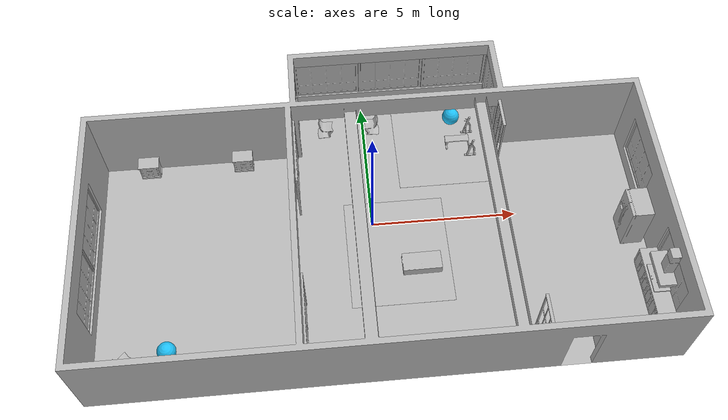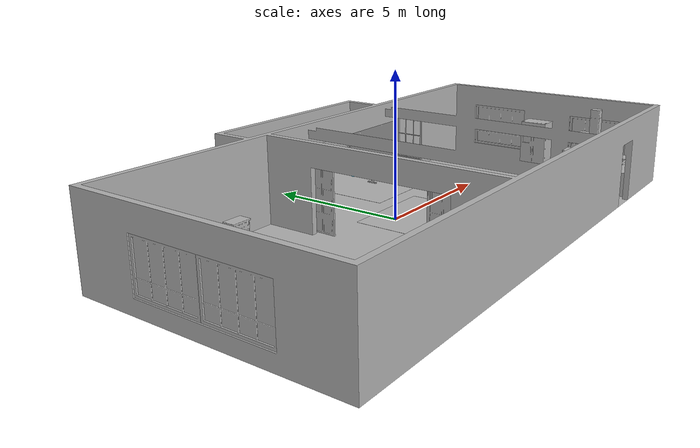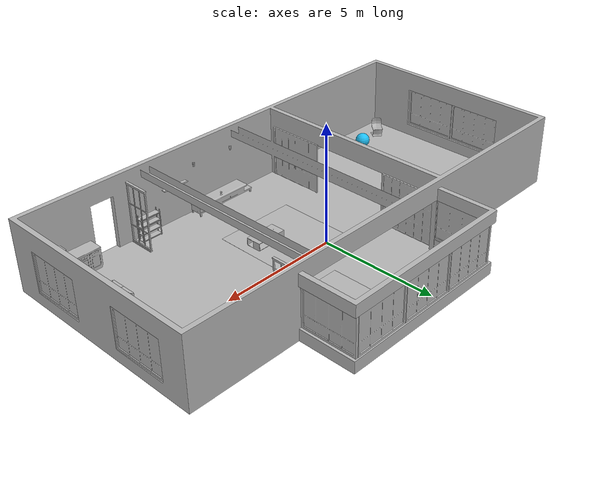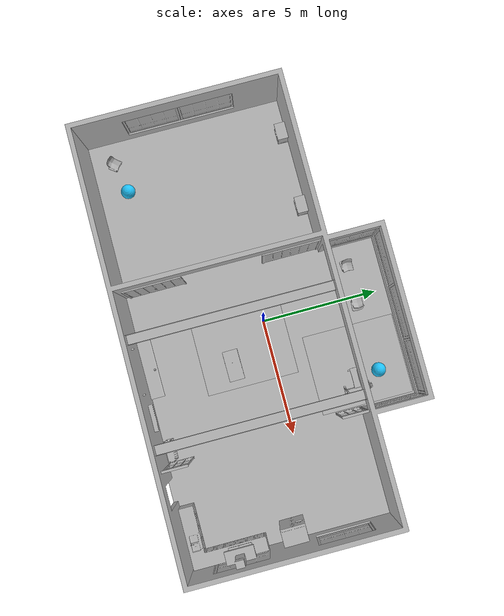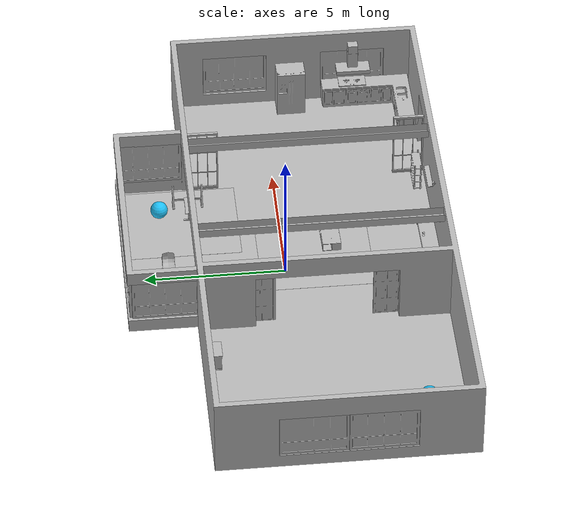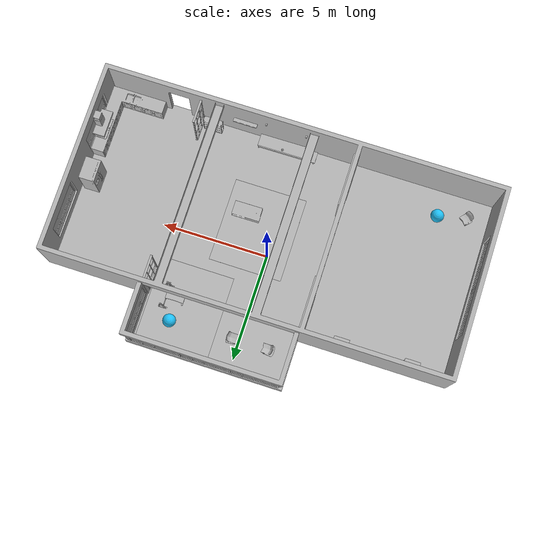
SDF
<sdf version="1.6">
 <world name="default">
  <gravity>0 0 -9.8</gravity>
  <magnetic_field>6e-06 2.3e-05 -4.2e-05</magnetic_field>
  <atmosphere type="adiabatic"/>
  <physics name="default_physics" default="0" type="ode">
   <max_step_size>0.001</max_step_size>
   <real_time_factor>1</real_time_factor>
   <real_time_update_rate>1000</real_time_update_rate>
   <ode>
    <max_contacts>4</max_contacts>
    <contact_surface_layer>0.001</contact_surface_layer>
    <contact_max_correcting_vel>100.0</contact_max_correcting_vel>
   </ode>
  </physics>
  <scene>
   <ambient>0.4 0.4 0.4 1</ambient>
   <background>0.7 0.7 0.7 1</background>
   <shadows>false</shadows>
   <grid>false</grid>
   <origin_visual>false</origin_visual>
  </scene>
  <spherical_coordinates>
   <surface_model>EARTH_WGS84</surface_model>
   <latitude_deg>0</latitude_deg>
   <longitude_deg>0</longitude_deg>
   <elevation>0</elevation>
   <heading_deg>0</heading_deg>
  </spherical_coordinates>
  <model name="Ball_01_001">
   <static>true</static>
   <include><uri>model://aws_robomaker_residential_Ball_01</uri></include>
   <pose>3.295503 4.225674 0.318684 0 -0 0</pose>
  </model>
  <model name="Ball_01_003">
   <static>true</static>
   <include><uri>model://aws_robomaker_residential_Ball_01</uri></include>
   <pose>-6.945503 -4.22174 0.318684 0 -0 0</pose>
  </model>
  <model name="NightStand_01_001">
   <static>true</static>
   <include><uri>model://aws_robomaker_residential_NightStand_01</uri></include>
   <pose>-7.725510 2.860420 0.005258 -0.000002 0 0</pose>
  </model>
  <model name="NightStand_01_002">
   <static>true</static>
   <include><uri>model://aws_robomaker_residential_NightStand_01</uri></include>
   <pose>-4.407341 2.860420 0.005256 0 0.000002 0</pose>
  </model>
  <model name="Board_01_001">
   <static>true</static>
   <include><uri>model://aws_robomaker_residential_Board_01</uri></include>
   <pose>2.779073 -5.392703 1.538173 0 -0 0</pose>
  </model>
  <model name="ChairD_01_001">
   <static>true</static>
   <include><uri>model://aws_robomaker_residential_ChairD_01</uri></include>
   <pose>-1.380775 4.104456 0 0 -0 0</pose>
  </model>
  <model name="ChairD_01_002">
   <static>true</static>
   <include><uri>model://aws_robomaker_residential_ChairD_01</uri></include>
   <pose>0.325214 4.104456 0 0 -0 -3.138741</pose>
  </model>
  <model name="ChairD_01_003">
   <static>true</static>
   <include><uri>model://aws_robomaker_residential_ChairD_01</uri></include>
   <pose>-8.270775 -4.504456 0 0 -0 0.869673</pose>
  </model>
  <model name="Carpet_01_001">
   <static>true</static>
   <include><uri>model://aws_robomaker_residential_Carpet_01</uri></include>
   <pose>0.785050 -1.106647 0.001106 0 -0 0</pose>
  </model>
  <model name="Carpet_01_002">
   <static>true</static>
   <include><uri>model://aws_robomaker_residential_Carpet_01</uri></include>
   <pose>2.854050 3.45 0.000585 0 -0 0</pose>
  </model>
  <model name="SecurityCamera_01_001">
   <static>true</static>
   <include><uri>model://aws_robomaker_residential_SecurityCamera_01</uri></include>
   <pose>0.842134 -4.996294 0.495067 0 -0 -2.841039</pose>
  </model>
  <model name="CoffeeTable_01_001">
   <static>true</static>
   <include><uri>model://aws_robomaker_residential_CoffeeTable_01</uri></include>
   <pose>1.512301 -1.733438 0.041983 0.000000 0.000000 0.01000</pose>
  </model>
  <model name="CookingBench_01_001">
   <include><uri>model://aws_robomaker_residential_CookingBench_01</uri></include>
   <pose>9.038383 -3.351140 0.903610 0 -0 3.137133</pose>
   <static>true</static>
  </model>
  <model name="FitnessEquipment_01_001">
   <static>true</static>
   <include><uri>model://aws_robomaker_residential_FitnessEquipment_01</uri></include>
   <pose>3.484720 3.169104 0.003168 0 -0 0</pose>
  </model>
  <model name="FoldingDoor_01_001">
   <static>true</static>
   <include><uri>model://aws_robomaker_residential_FoldingDoor_01</uri></include>
   <pose>-2.461096 1.844219 0.041881 0 -0 0</pose>
  </model>
  <model name="FoldingDoor_01_002">
   <static>true</static>
   <include><uri>model://aws_robomaker_residential_FoldingDoor_01</uri></include>
   <pose>-2.461096 -4.053320 0.041881 0 -0 0</pose>
  </model>
  <model name="HouseWallB_01_001">
   <static>true</static>
   <include><uri>model://aws_robomaker_residential_HouseWallB_01</uri></include>
  </model>
  <model name="FloorB_01_001">
   <static>true</static>
   <include><uri>model://aws_robomaker_residential_FloorB_01</uri></include>
  </model>
  <model name="FoldingDoor_02_001">
   <static>true</static>
   <include><uri>model://aws_robomaker_residential_FoldingDoor_02</uri></include>
   <pose>4.674231 2.46451 0 0 -0 3.14159</pose>
  </model>
  <model name="FoldingDoor_02_002">
   <static>true</static>
   <include><uri>model://aws_robomaker_residential_FoldingDoor_02</uri></include>
   <pose>4.8912 -4.84968 0 0 -0 0</pose>
  </model>
  <model name="KitchenCabinet_01_001">
   <static>true</static>
   <include><uri>model://aws_robomaker_residential_KitchenCabinet_01</uri></include>
   <pose>8.002009 -3.836509 0.012068 0 -0 -3.140001</pose>
  </model>
  <model name="LightC_01_001">
   <static>true</static>
   <include><uri>model://aws_robomaker_residential_LightC_01</uri></include>
   <pose>1.769567 -5.4443710 2.000000 0 -0 0</pose>
  </model>
  <model name="LightC_01_002">
   <static>true</static>
   <include><uri>model://aws_robomaker_residential_LightC_01</uri></include>
   <pose>-0.138245 -5.4443710 2.000000 0 -0 0</pose>
  </model>
  <model name="Rangehood_01_001">
   <static>true</static>
   <include><uri>model://aws_robomaker_residential_Rangehood_01</uri></include>
   <pose>9.019794 -3.369940 1.507605 0 -0 0</pose>
  </model>
  <model name="Refrigerator_01_001">
   <static>true</static>
   <include><uri>model://aws_robomaker_residential_Refrigerator_01</uri></include>
   <pose>8.702731 -1.032031 0 0 -0 -1.563499</pose>
  </model>
  <model name="ShoeRack_01_001">
   <static>true</static>
   <include><uri>model://aws_robomaker_residential_ShoeRack_01</uri></include>
   <pose>4.297978 -5.173566 0 0 -0 0</pose>
  </model>
  <model name="TVCabinet_01_001">
   <static>true</static>
   <include><uri>model://aws_robomaker_residential_TVCabinet_01</uri></include>
   <pose>0.629509 -5.183576 -0.017049 0 -0 1.5792</pose>
  </model>
  <model name="RoomWindow_01_001">
   <static>true</static>
   <include><uri>model://aws_robomaker_residential_RoomWindow_01</uri></include>
   <pose>-9.418600 -0.026285 0.502739 0 -0 0</pose>
  </model>
  <model name="RoomWindow_01_002">
   <static>true</static>
   <include><uri>model://aws_robomaker_residential_RoomWindow_01</uri></include>
   <pose>-9.418600 -2.374090 0.502739 0 -0 0</pose>
  </model>
  <model name="RoomWindow_01_003">
   <static>true</static>
   <include><uri>model://aws_robomaker_residential_RoomWindow_01</uri></include>
   <pose>9.422616 -3.373981 0.502739 0 -0 -3.136099</pose>
  </model>
  <model name="RoomWindow_01_004">
   <static>true</static>
   <include><uri>model://aws_robomaker_residential_RoomWindow_01</uri></include>
   <pose>9.422558 0.968520 0.496581 0 -0 -3.136099</pose>
  </model>
  <model name="RoomWindow_01_005">
   <static>true</static>
   <include><uri>model://aws_robomaker_residential_RoomWindow_01</uri></include>
   <pose>4.722317 4.470281 0.502739 0 -0 -3.136099</pose>
  </model>
  <model name="RoomWindow_01_006">
   <static>true</static>
   <include><uri>model://aws_robomaker_residential_RoomWindow_01</uri></include>
   <pose>3.488520 5.600688 0.502739 0 -0 -1.566274</pose>
  </model>
  <model name="RoomWindow_01_007">
   <static>true</static>
   <include><uri>model://aws_robomaker_residential_RoomWindow_01</uri></include>
   <pose>1.140949 5.600688 0.502739 0 -0 -1.566274</pose>
  </model>
  <model name="RoomWindow_01_008">
   <static>true</static>
   <include><uri>model://aws_robomaker_residential_RoomWindow_01</uri></include>
   <pose>-1.199340 5.600688 0.502739 0 -0 -1.566274</pose>
  </model>
  <model name="RoomWindow_01_009">
   <static>true</static>
   <include><uri>model://aws_robomaker_residential_RoomWindow_01</uri></include>
   <pose>-2.396624 4.387607 0.502739 0 -0 0</pose>
  </model>
  <light name="LivingRoom_CeilingLight_0" type="point">
   <pose>1.194296 4.155759 2.2 0 -0 0</pose>
   <diffuse>0.5 0.5 0.5 1</diffuse>
   <specular>0.1 0.1 0.1 1</specular>
   <attenuation>
    <range>20</range>
    <constant>0.32</constant>
    <linear>0.01</linear>
    <quadratic>0.03</quadratic>
   </attenuation>
   <cast_shadows>0</cast_shadows>
   <direction>0 0 -1</direction>
  </light>
  <light name="LivingRoom_CeilingLight_1" type="point">
   <pose>1.194296 -1.589959 2.2 0 -0 0</pose>
   <diffuse>0.5 0.5 0.5 1</diffuse>
   <specular>0.1 0.1 0.1 1</specular>
   <attenuation>
    <range>20</range>
    <constant>0.05</constant>
    <linear>0.01</linear>
    <quadratic>0.09</quadratic>
   </attenuation>
   <cast_shadows>0</cast_shadows>
   <direction>0 0 -1</direction>
  </light>
  <light name="LivingRoom_WallLight_0" type="point">
   <pose>1.76956 -5.444370 2.2 0 -0 0</pose>
   <diffuse>0.24 0.24 0.24 1</diffuse>
   <specular>0.1 0.1 0.1 1</specular>
   <attenuation>
    <range>20</range>
    <constant>0.12</constant>
    <linear>0.00</linear>
    <quadratic>0.03</quadratic>
   </attenuation>
   <direction>0 0 -1</direction>
  </light>
  <light name="LivingRoom_WallLight_1" type="point">
   <pose>-0.13826 -5.444370 2.2 0 -0 0</pose>
   <diffuse>0.24 0.24 0.24 1</diffuse>
   <specular>0.1 0.1 0.1 1</specular>
   <attenuation>
    <range>20</range>
    <constant>0.12</constant>
    <linear>0.00</linear>
    <quadratic>0.03</quadratic>
   </attenuation>
   <direction>0 0 -1</direction>
  </light>
  <light name="TV_Light_0" type="point">
   <pose>0.8269 -4.939577 1.1 0 -0 0</pose>
   <diffuse>0.31372 0.31372 0.34901 1</diffuse>
   <specular>0.1 0.1 0.1 1</specular>
   <attenuation>
    <range>3</range>
    <constant>0.10</constant>
    <linear>0.04</linear>
    <quadratic>0.50</quadratic>
   </attenuation>
   <direction>0 0 -1</direction>
  </light>
  <light name="BedRoom_CeilingLight_0" type="point">
   <pose>-6.451061 -0.692040 2.000000 0 -0 0</pose>
   <diffuse>0.5 0.5 0.5 1</diffuse>
   <specular>0.1 0.1 0.1 1</specular>
   <attenuation>
    <range>20</range>
    <constant>0.32</constant>
    <linear>0.01</linear>
    <quadratic>0.03</quadratic>
   </attenuation>
   <cast_shadows>0</cast_shadows>
   <direction>0 0 -1</direction>
  </light>
  <light name="Kitchen_CeilingLight_0" type="point">
   <pose>7.8582 -1.5905 2.280000 0 -0 0</pose>
   <diffuse>0.5 0.5 0.5 1</diffuse>
   <specular>0.1 0.1 0.1 1</specular>
   <attenuation>
    <range>20</range>
    <constant>0.3</constant>
    <linear>0.01</linear>
    <quadratic>0.01</quadratic>
   </attenuation>
   <cast_shadows>0</cast_shadows>
   <direction>0 0 -1</direction>
  </light>
 </world>
</sdf>

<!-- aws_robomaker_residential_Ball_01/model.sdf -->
<sdf version="1.6">
  <model name="aws_robomaker_residential_Ball_01">
    <link name="link">
      <inertial>
        <mass>0.12</mass>
        <!-- 2r = 62cm -->
          <inertia>
            <ixx>0.030752</ixx>
            <ixy>0</ixy>
            <ixz>0</ixz>
            <iyy>0.030752</iyy>
            <iyz>0</iyz>
            <izz>0.030752</izz>
          </inertia>
      </inertial>
      <collision name="collision">

        <geometry>
          <sphere>
            <radius>0.31 </radius>
          </sphere>

        </geometry>

        <surface>
          <friction>
            <ode>
              <mu>0.85</mu>
              <mu2>0.85</mu2>
            </ode>
          </friction>

        <!-- Add some bounciness to the ball -->
          <contact>
            <ode>
              <kd>8500</kd>
              <max_vel>5.1</max_vel>
            </ode>
          </contact>
        </surface>

      </collision>
      <visual name="visual">
	    <geometry>
          <sphere>
            <radius>0.31 </radius>
          </sphere>
      </geometry>
          <material>
            <diffuse>0.12 0.76 0.97 1</diffuse>
            <ambient>0.03 0.21 0.27 1</ambient>
          </material>
      <meta> <layer> 1 </layer></meta>
</visual>
    </link>
  </model>
</sdf>

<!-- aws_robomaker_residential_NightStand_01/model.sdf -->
<sdf version="1.6">
  <model name="aws_robomaker_residential_NightStand_01">
    <link name="link">
      <inertial>
        <mass>13.6</mass>

        <inertia>
          <ixx>0.6165</ixx>
          <ixy>0</ixy>
          <ixz>0</ixz>
          <iyy>1.29664</iyy>
          <iyz>0</iyz>
          <izz>0.7706</izz>
        </inertia>

      </inertial>
      <collision name="collision">
        <geometry>
          <mesh>
            <uri>models://aws_robomaker_residential_NightStand_01/meshes/aws_NightStand_01_collision.DAE</uri>
            <scale>1 1 1</scale>
          </mesh>
        </geometry>
      </collision>
      <visual name="visual">
	    <geometry>
          <mesh>
            <uri>models://aws_robomaker_residential_NightStand_01/meshes/aws_NightStand_01_visual.DAE</uri>
          </mesh>
        </geometry>
      <meta> <layer> 1 </layer></meta>
</visual>
    </link>
    <static>1</static>
  </model>
</sdf>

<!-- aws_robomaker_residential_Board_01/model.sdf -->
<sdf version="1.6">
  <model name="aws_robomaker_residential_Board_01">
    <link name="link">
      <inertial>
        <mass>1</mass>
      </inertial>
      <collision name="collision">
        <geometry>
          <mesh>
            <uri>models://aws_robomaker_residential_Board_01/meshes/aws_Board_01_collision.DAE</uri>
            <scale>1 1 1</scale>
          </mesh>
        </geometry>
      </collision>
      <visual name="visual">
	    <geometry>
          <mesh>
            <uri>models://aws_robomaker_residential_Board_01/meshes/aws_Board_01_visual.DAE</uri>
          </mesh>
        </geometry>
      <meta> <layer> 2 </layer></meta>
</visual>
    </link>

    <static>1</static>
  </model>
</sdf>

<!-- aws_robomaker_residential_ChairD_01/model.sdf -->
<sdf version="1.6">
  <model name="aws_robomaker_residential_ChairD_01">
    <link name="link">

      <inertial>
        <mass>4.5</mass>
          <inertia>
            <ixy>0</ixy>
            <ixz>0</ixz>
            <iyz>0</iyz>
            <ixx>0.217</ixx>
            <iyy>0.217</iyy>
            <izz>0.067</izz>
          </inertia>
      </inertial>

      <collision name="collision">

        <geometry>
          <mesh>
            <uri>models://aws_robomaker_residential_ChairD_01/meshes/aws_ChairD_01_collision.DAE</uri>
            <scale>1 1 1</scale>
          </mesh>
        </geometry>

      </collision>
      <visual name="visual">
	    <geometry>
          <mesh>
            <uri>models://aws_robomaker_residential_ChairD_01/meshes/aws_ChairD_01_visual.DAE</uri>
          </mesh>
        </geometry>
      <meta> <layer> 1 </layer></meta>
</visual>
    </link>
  </model>
</sdf>

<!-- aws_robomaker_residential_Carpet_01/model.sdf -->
<sdf version="1.6">
  <model name="aws_robomaker_residential_Carpet_01">
    <link name="link">
      <inertial>
        <mass>8.1</mass>
      </inertial>

      <collision name="collision">

        <geometry>
          <mesh>
            <uri>models://aws_robomaker_residential_Carpet_01/meshes/aws_Carpet_01_collision.DAE</uri>
            <scale>1 1 0.95</scale>
          </mesh>
        </geometry>

        <surface>
          <friction>
            <ode>
              <mu>100</mu>
              <mu2>50</mu2>
            </ode>
          </friction>
          <contact>
            <ode>
            </ode>
          </contact>
        </surface>

        <pose>0 0 -0.01 0 0 0 </pose>
      </collision>

      <visual name="visual">
	    <geometry>
          <mesh>
            <uri>models://aws_robomaker_residential_Carpet_01/meshes/aws_Carpet_01_visual.DAE</uri>
          </mesh>
        </geometry>
      <meta> <layer> 1 </layer></meta>
</visual>
    </link>

    <static>1</static>

  </model>
</sdf>

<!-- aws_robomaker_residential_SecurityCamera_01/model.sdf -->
<sdf version="1.6">
  <model name="aws_robomaker_residential_SecurityCamera_01">
    <link name="link">
      <inertial>
        <mass>1</mass>
        <inertia>
          <ixx>18.2222</ixx>
          <ixy>0</ixy>
          <ixz>0</ixz>
          <iyy>18.2222</iyy>
          <iyz>0</iyz>
          <izz>0.0018767</izz>
        </inertia>
      </inertial>
      <collision name="collision">
        <geometry>
          <mesh>
            <uri>models://aws_robomaker_residential_SecurityCamera_01/meshes/aws_SecurityCamera_01_collision.DAE</uri>
            <scale>1 1 1</scale>
          </mesh>
        </geometry>
      </collision>
      <visual name="visual">
	    <geometry>
          <mesh>
            <uri>models://aws_robomaker_residential_SecurityCamera_01/meshes/aws_SecurityCamera_01_visual.DAE</uri>
          </mesh>
        </geometry>
        <meta>
          <layer>2</layer>
        </meta>
      </visual>
    </link>
  </model>
</sdf>

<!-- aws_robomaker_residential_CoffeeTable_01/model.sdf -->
<sdf version="1.6">
  <model name="aws_robomaker_residential_CoffeeTable_01">
    <link name="link">
      <inertial>
        <mass>21.7</mass>

        <inertia>
          <ixx>0.8137499999999998</ixx>
          <ixy>0</ixy>
          <ixz>0</ixz>
          <iyy>2.76675</iyy>
          <iyz>0</iyz>
          <izz>3.254</izz>
        </inertia>

      </inertial>

      <collision name="collision">
        <geometry>
          <mesh>
            <uri>models://aws_robomaker_residential_CoffeeTable_01/meshes/aws_CoffeeTable_01_collision.DAE</uri>
            <scale>1 1 1</scale>
          </mesh>
        </geometry>

        <surface>
          <contact>
            <ode>
              <max_vel>0.01</max_vel>
            </ode>
          </contact>
         </surface>
      </collision>

      <visual name="visual">
	    <geometry>
          <mesh>
            <uri>models://aws_robomaker_residential_CoffeeTable_01/meshes/aws_CoffeeTable_01_visual.DAE</uri>
          </mesh>
        </geometry>
      <meta> <layer> 1 </layer></meta>
</visual>
    </link>
    <static>1</static>
  </model>
</sdf>

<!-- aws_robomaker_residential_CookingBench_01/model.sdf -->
<sdf version="1.6">
  <model name="aws_robomaker_residential_CookingBench_01">
    <link name="link">
      <inertial>
        <mass>1</mass>
      </inertial>
      <collision name="collision">
        <geometry>
          <mesh>
            <uri>models://aws_robomaker_residential_CookingBench_01/meshes/aws_CookingBench_01_collision.DAE</uri>
            <scale>1 1 1</scale>
          </mesh>
        </geometry>
      </collision>
      <visual name="visual">
	    <geometry>
          <mesh>
            <uri>models://aws_robomaker_residential_CookingBench_01/meshes/aws_CookingBench_01_visual.DAE</uri>
          </mesh>
        </geometry>
      <meta> <layer> 1 </layer></meta>
</visual>
    </link>
  </model>
</sdf>

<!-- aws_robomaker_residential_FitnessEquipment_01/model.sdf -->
<sdf version="1.6">
  <model name="aws_robomaker_residential_FitnessEquipment_01">
    <link name="link">
      <inertial>
        <mass>80</mass>
      </inertial>
      <collision name="collision">
        <geometry>
          <mesh>
            <uri>models://aws_robomaker_residential_FitnessEquipment_01/meshes/aws_FitnessEquipment_01_collision.DAE</uri>
            <scale>1 1 1</scale>
          </mesh>
        </geometry>
      </collision>
      <visual name="visual">
	    <geometry>
          <mesh>
            <uri>models://aws_robomaker_residential_FitnessEquipment_01/meshes/aws_FitnessEquipment_01_visual.DAE</uri>
          </mesh>
        </geometry>
      <meta> <layer> 1 </layer></meta>
</visual>
    </link>
  <static>1</static>
  </model>
</sdf>

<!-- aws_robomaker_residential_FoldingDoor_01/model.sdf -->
<sdf version="1.6">
  <model name="aws_robomaker_residential_FoldingDoor_01">
    <link name="link">
      <inertial>
        <mass>1</mass>
      </inertial>
      <collision name="collision">
        <geometry>
          <mesh>
            <uri>models://aws_robomaker_residential_FoldingDoor_01/meshes/aws_FoldingDoor_01_collision.DAE</uri>
            <scale>1 1 1</scale>
          </mesh>
        </geometry>
      </collision>
      <visual name="visual">
	    <geometry>
          <mesh>
            <uri>models://aws_robomaker_residential_FoldingDoor_01/meshes/aws_FoldingDoor_01_visual.DAE</uri>
          </mesh>
        </geometry>
      <meta> <layer> 2 </layer></meta>
</visual>
    </link>
	<static>1</static>
  </model>
</sdf>

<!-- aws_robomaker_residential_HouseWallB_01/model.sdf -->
<sdf version="1.6">
  <model name="aws_robomaker_residential_HouseWallB_01">
    <link name="link">
      <inertial>
        <mass>1</mass>
      </inertial>
      <collision name="collision">
        <geometry>
          <mesh>
            <uri>models://aws_robomaker_residential_HouseWallB_01/meshes/aws_HouseWallB_01_collision.DAE</uri>
            <scale>1 1 1</scale>
          </mesh>
        </geometry>
      </collision>
      <visual name="visual">
	    <geometry>
          <mesh>
            <uri>models://aws_robomaker_residential_HouseWallB_01/meshes/aws_HouseWallB_01_visual.DAE</uri>
          </mesh>
        </geometry>
      <meta> <layer> 2 </layer></meta>
</visual>
    </link>
<static>1</static>
  </model>
</sdf>

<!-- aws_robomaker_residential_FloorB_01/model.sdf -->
<sdf version="1.6">
  <model name="aws_robomaker_residential_FloorB_01">
    <link name="link">
      <inertial>
        <mass>100</mass>
      </inertial>

      <collision name="collision">
        <geometry>
          <mesh>
            <uri>models://aws_robomaker_residential_FloorB_01/meshes/aws_FloorB_01_collision.DAE</uri>
            <scale>1 1 0.9</scale>
          </mesh>
        </geometry>

        <surface>
          <friction>
            <ode>
              <mu>100</mu>
              <mu2>50</mu2>
            </ode>
          </friction>
        </surface>
      </collision>

      <visual name="visual">
	    <geometry>
          <mesh>
            <uri>models://aws_robomaker_residential_FloorB_01/meshes/aws_FloorB_01_visual.DAE</uri>
          </mesh>
        </geometry>
      <meta> <layer> 1 </layer></meta>
</visual>
    </link>

	<static>1</static>
  </model>
</sdf>

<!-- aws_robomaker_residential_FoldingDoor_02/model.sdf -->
<sdf version="1.6">
  <model name="aws_robomaker_residential_FoldingDoor_02">
    <link name="link">
      <inertial>
        <mass>1</mass>
      </inertial>
      <collision name="collision">
        <geometry>
          <mesh>
            <uri>models://aws_robomaker_residential_FoldingDoor_02/meshes/aws_FoldingDoor_02_collision.DAE</uri>
            <scale>1 1 1</scale>
          </mesh>
        </geometry>
      </collision>
      <visual name="visual">
	    <geometry>
          <mesh>
            <uri>models://aws_robomaker_residential_FoldingDoor_02/meshes/aws_FoldingDoor_02_visual.DAE</uri>
          </mesh>
        </geometry>
      <meta> <layer> 2 </layer></meta>
</visual>
    </link>
<static>1</static>
  </model>
</sdf>

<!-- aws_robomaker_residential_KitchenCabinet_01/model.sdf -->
<sdf version="1.6">
  <model name="aws_robomaker_residential_KitchenCabinet_01">
    <link name="link">
      <inertial>
        <mass>1</mass>
      </inertial>
      <collision name="collision">
        <laser_retro>0</laser_retro>
        <max_contacts>10</max_contacts>
        <geometry>
          <mesh>
            <uri>models://aws_robomaker_residential_KitchenCabinet_01/meshes/aws_KitchenCabinet_01_collision.DAE</uri>
            <scale>1 1 1</scale>
          </mesh>
        </geometry>
      </collision>
      <visual name="visual">
	    <geometry>
          <mesh>
            <uri>models://aws_robomaker_residential_KitchenCabinet_01/meshes/aws_KitchenCabinet_01_visual.DAE</uri>
          </mesh>
        </geometry>
      <meta> <layer> 1 </layer></meta>
</visual>
    </link>

    <static>1</static>
  </model>
</sdf>

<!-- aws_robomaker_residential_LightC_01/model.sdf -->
<sdf version="1.6">
  <model name="aws_robomaker_residential_LightC_01">
    <link name="link">
      <inertial>
        <mass>1</mass>
      </inertial>
      <collision name="collision">
        <geometry>
          <mesh>
            <uri>models://aws_robomaker_residential_LightC_01/meshes/aws_LightC_01_collision.DAE</uri>
            <scale>1 1 1</scale>
          </mesh>
        </geometry>
      </collision>
      <visual name="visual">
	    <geometry>
          <mesh>
            <uri>models://aws_robomaker_residential_LightC_01/meshes/aws_LightC_01_visual.DAE</uri>
          </mesh>
        </geometry>
      <meta> <layer> 2 </layer></meta>
</visual>
    </link>
	<static>1</static>
  </model>
</sdf>

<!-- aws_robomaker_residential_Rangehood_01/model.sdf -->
<sdf version="1.6">
  <model name="aws_robomaker_residential_Rangehood_01">
    <link name="link">
      <inertial>
        <mass>1</mass>
      </inertial>
      <collision name="collision">
        <geometry>
          <mesh>
            <uri>models://aws_robomaker_residential_Rangehood_01/meshes/aws_Rangehood_01_collision.DAE</uri>
            <scale>1 1 1</scale>
          </mesh>
        </geometry>
      </collision>
      <visual name="visual">
	    <geometry>
          <mesh>
            <uri>models://aws_robomaker_residential_Rangehood_01/meshes/aws_Rangehood_01_visual.DAE</uri>
          </mesh>
        </geometry>
      <meta> <layer> 2 </layer></meta>
</visual>
    </link>
	<static>1</static>
  </model>
</sdf>

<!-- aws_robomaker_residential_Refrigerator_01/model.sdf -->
<sdf version="1.6">
  <model name="aws_robomaker_residential_Refrigerator_01">
    <link name="link">
      <inertial>
        <mass>1</mass>
      </inertial>
      <collision name="collision">
        <geometry>
          <mesh>
            <uri>models://aws_robomaker_residential_Refrigerator_01/meshes/aws_Refrigerator_01_collision.DAE</uri>
            <scale>1 1 1</scale>
          </mesh>
        </geometry>
      </collision>
      <visual name="visual">
	    <geometry>
          <mesh>
            <uri>models://aws_robomaker_residential_Refrigerator_01/meshes/aws_Refrigerator_01_visual.DAE</uri>
          </mesh>
        </geometry>
      <meta> <layer> 1 </layer></meta>
</visual>
    </link>
    <static>1</static>
  </model>
</sdf>

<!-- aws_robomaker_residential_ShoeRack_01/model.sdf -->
<sdf version="1.6">
  <model name="aws_robomaker_residential_ShoeRack_01">
    <link name="link">

      <inertial>
        <mass>6</mass>
        <inertia>
          <ixx>0.1</ixx>
          <ixy>0.0</ixy>
          <ixz>0.0</ixz>
          <iyy>0.1</iyy>
          <iyz>0.0</iyz>
          <izz>0.1</izz>
        </inertia>
      </inertial>

      <collision name="collision">

        <geometry>
          <mesh>
            <uri>model://aws_robomaker_residential_ShoeRack_01/meshes/aws_ShoeRack_01_collision.DAE</uri>
            <scale>1 1 1</scale>
          </mesh>
        </geometry>

        <surface>
          <friction>
            <ode>
              <mu>0.2</mu>
              <mu2>0.2</mu2>
            </ode>
          </friction>

          <contact>
            <ode>
              <kd>2500</kd>
            </ode>
          </contact>

        </surface>

      </collision>

      <visual name="visual">
	    <geometry>
          <mesh>
            <uri>model://aws_robomaker_residential_ShoeRack_01/meshes/aws_ShoeRack_01_visual.DAE</uri>
          </mesh>
        </geometry>
      <meta> <layer> 1 </layer></meta>
</visual>

    </link>
  </model>
</sdf>

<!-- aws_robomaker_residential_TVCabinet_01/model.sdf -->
<sdf version="1.6">
  <model name="aws_robomaker_residential_TVCabinet_01">
    <link name="link">

      <inertial>
        <mass>59.2</mass>

        <inertia>
          <ixx>30.4</ixx>
          <ixy>0</ixy>
          <ixz>0</ixz>
          <iyy>2.56</iyy>
          <iyz>0</iyz>
          <izz>31.38</izz>
        </inertia>

      </inertial>

      <collision name="collision">
        <geometry>
          <mesh>
            <uri>models://aws_robomaker_residential_TVCabinet_01/meshes/aws_TVCabinet_01_collision.DAE</uri>
            <scale>1 1 1</scale>
          </mesh>
        </geometry>
      </collision>

      <visual name="visual">
	    <geometry>
          <mesh>
            <uri>models://aws_robomaker_residential_TVCabinet_01/meshes/aws_TVCabinet_01_visual.DAE</uri>
          </mesh>
        </geometry>
      <meta> <layer> 1 </layer></meta>
</visual>
    </link>
  <static>1</static>
  </model>
</sdf>

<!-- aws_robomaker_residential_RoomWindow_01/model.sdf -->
<sdf version="1.6">
  <model name="aws_robomaker_residential_RoomWindow_01">
    <link name="link">
      <inertial>
        <mass>1</mass>
      </inertial>
      <collision name="collision">
        <geometry>
          <mesh>
            <uri>models://aws_robomaker_residential_RoomWindow_01/meshes/aws_RoomWindow_01_collision.DAE</uri>
            <scale>1 1 1</scale>
          </mesh>
        </geometry>
      </collision>
      <visual name="visual">
	    <geometry>
          <mesh>
            <uri>models://aws_robomaker_residential_RoomWindow_01/meshes/aws_RoomWindow_01_visual.DAE</uri>
          </mesh>
        </geometry>
      <meta> <layer> 2 </layer></meta>
</visual>
    </link>
	<static>1</static>
  </model>
</sdf>
